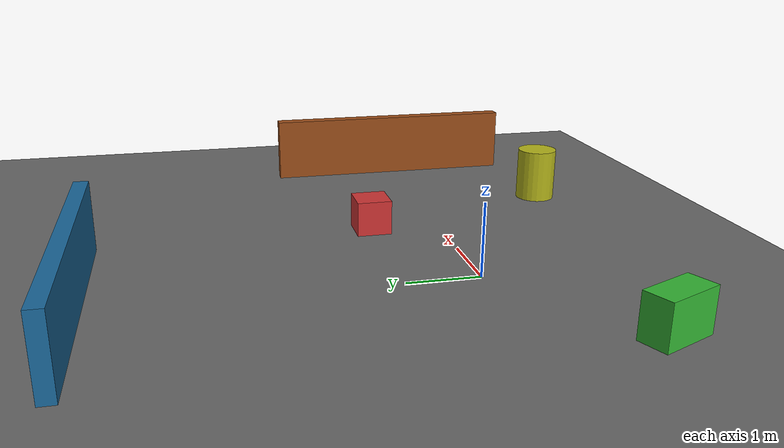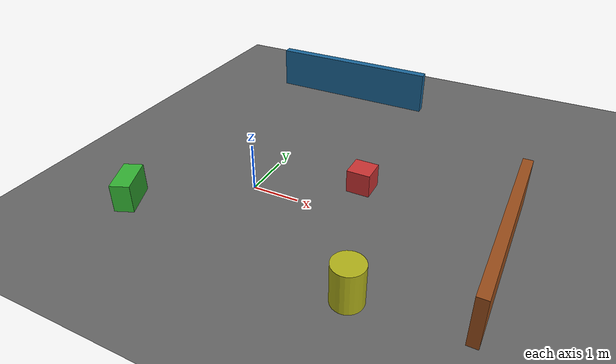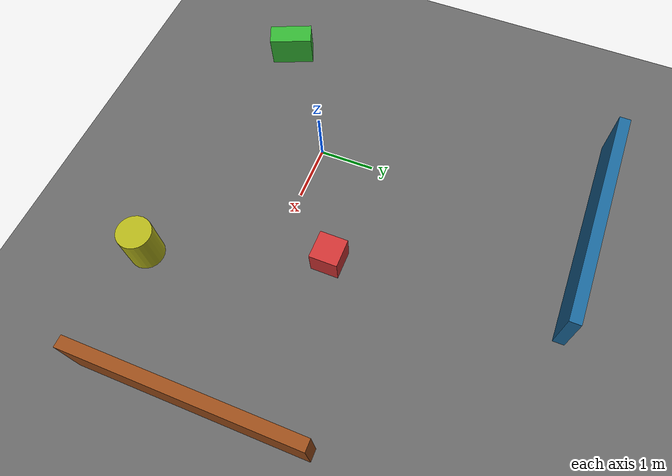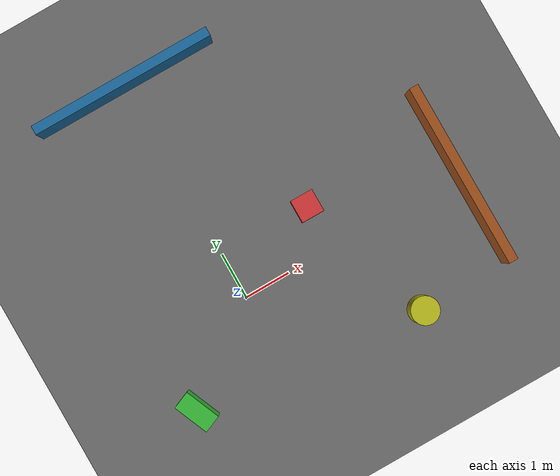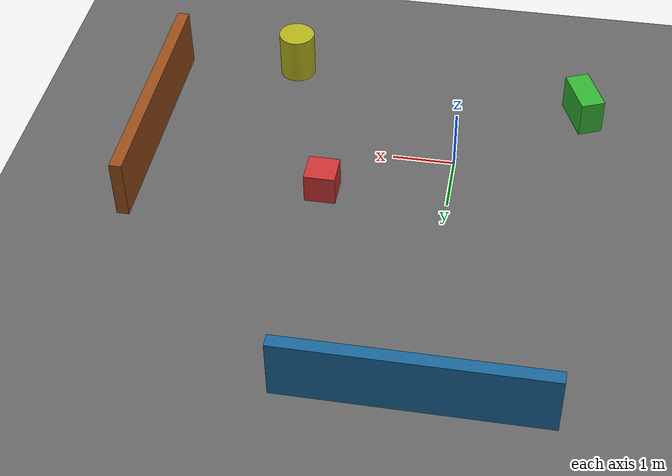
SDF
<?xml version="1.0" ?>
<sdf version="1.9">
<world name="importer_test">

  <!-- ============================================================
       PHYSICS
  ============================================================ -->
  <physics name="1ms" type="ignored">
    <max_step_size>0.001</max_step_size>
    <real_time_factor>1.0</real_time_factor>
  </physics>

  <!-- Core: physics simulation -->
  <plugin filename="gz-sim-physics-system"
          name="gz::sim::systems::Physics"/>

  <!-- Core: allows spawning/removing models at runtime (required by importer) -->
  <plugin filename="gz-sim-user-commands-system"
          name="gz::sim::systems::UserCommands"/>

  <!-- Core: streams scene updates to the GUI renderer -->
  <plugin filename="gz-sim-scene-broadcaster-system"
          name="gz::sim::systems::SceneBroadcaster"/>

  <!-- Sensor pipeline: renders lidar rays and camera frames (Ogre2) -->
  <plugin filename="gz-sim-sensors-system"
          name="gz::sim::systems::Sensors">
    <render_engine>ogre2</render_engine>
  </plugin>

  <!-- IMU: integrates accelerometer + gyro data per-step -->
  <plugin filename="gz-sim-imu-system"
          name="gz::sim::systems::Imu"/>

  <!-- GPS / NavSat: GNSS position sensor -->
  <plugin filename="gz-sim-navsat-system"
          name="gz::sim::systems::NavSat"/>

  <!-- Contact: collision/touch sensors -->
  <plugin filename="gz-sim-contact-system"
          name="gz::sim::systems::Contact"/>

  <!-- ============================================================
       SCENE SETUP
  ============================================================ -->

  <!-- Directional sun light -->
  <light name="sun" type="directional">
    <cast_shadows>true</cast_shadows>
    <pose>0 0 10 0 0 0</pose>
    <diffuse>0.8 0.8 0.8 1</diffuse>
    <specular>0.2 0.2 0.2 1</specular>
    <direction>-0.5 0.1 -0.9</direction>
    <attenuation>
      <range>1000</range>
      <constant>0.9</constant>
      <linear>0.01</linear>
      <quadratic>0.001</quadratic>
    </attenuation>
  </light>

  <!-- Ground plane (grey, with friction for wheel contacts) -->
  <model name="ground_plane">
    <static>true</static>
    <link name="link">
      <collision name="collision">
        <geometry>
          <plane>
            <normal>0 0 1</normal>
            <size>100 100</size>
          </plane>
        </geometry>
        <surface>
          <friction>
            <ode>
              <mu>1.0</mu>
              <mu2>1.0</mu2>
            </ode>
          </friction>
          <contact>
            <ode>
              <min_depth>0.001</min_depth>
            </ode>
          </contact>
        </surface>
      </collision>
      <visual name="visual">
        <geometry>
          <plane>
            <normal>0 0 1</normal>
            <size>100 100</size>
          </plane>
        </geometry>
        <material>
          <ambient>0.4 0.4 0.4 1</ambient>
          <diffuse>0.4 0.4 0.4 1</diffuse>
          <specular>0.1 0.1 0.1 1</specular>
        </material>
      </visual>
    </link>
  </model>

  <model name="wall_north">
    <static>true</static>
    <pose>5 0 0.5 0 0 0</pose>
    <link name="link">
      <visual name="v"><geometry><box><size>0.2 4 1</size></box></geometry>
        <material><ambient>0.6 0.3 0.1 1</ambient><diffuse>0.6 0.3 0.1 1</diffuse></material>
      </visual>
      <collision name="c"><geometry><box><size>0.2 4 1</size></box></geometry></collision>
    </link>
  </model>

  <model name="wall_east">
    <static>true</static>
    <pose>0 5 0.5 0 0 0</pose>
    <link name="link">
      <visual name="v"><geometry><box><size>4 0.2 1</size></box></geometry>
        <material><ambient>0.1 0.4 0.6 1</ambient><diffuse>0.1 0.4 0.6 1</diffuse></material>
      </visual>
      <collision name="c"><geometry><box><size>4 0.2 1</size></box></geometry></collision>
    </link>
  </model>

  <model name="box_obstacle_1">
    <static>true</static>
    <pose>2 1 0.25 0 0 0</pose>
    <link name="link">
      <visual name="v"><geometry><box><size>0.5 0.5 0.5</size></box></geometry>
        <material><ambient>0.8 0.2 0.2 1</ambient><diffuse>0.8 0.2 0.2 1</diffuse></material>
      </visual>
      <collision name="c"><geometry><box><size>0.5 0.5 0.5</size></box></geometry></collision>
    </link>
  </model>

  <model name="box_obstacle_2">
    <static>true</static>
    <pose>-2 -1.5 0.3 0 0 0.4</pose>
    <link name="link">
      <visual name="v"><geometry><box><size>0.4 0.8 0.6</size></box></geometry>
        <material><ambient>0.2 0.7 0.2 1</ambient><diffuse>0.2 0.7 0.2 1</diffuse></material>
      </visual>
      <collision name="c"><geometry><box><size>0.4 0.8 0.6</size></box></geometry></collision>
    </link>
  </model>

  <model name="cylinder_obstacle">
    <static>true</static>
    <pose>3 -2 0.4 0 0 0</pose>
    <link name="link">
      <visual name="v"><geometry><cylinder><radius>0.3</radius><length>0.8</length></cylinder></geometry>
        <material><ambient>0.7 0.7 0.1 1</ambient><diffuse>0.7 0.7 0.1 1</diffuse></material>
      </visual>
      <collision name="c"><geometry><cylinder><radius>0.3</radius><length>0.8</length></cylinder></geometry></collision>
    </link>
  </model>

</world>
</sdf>
